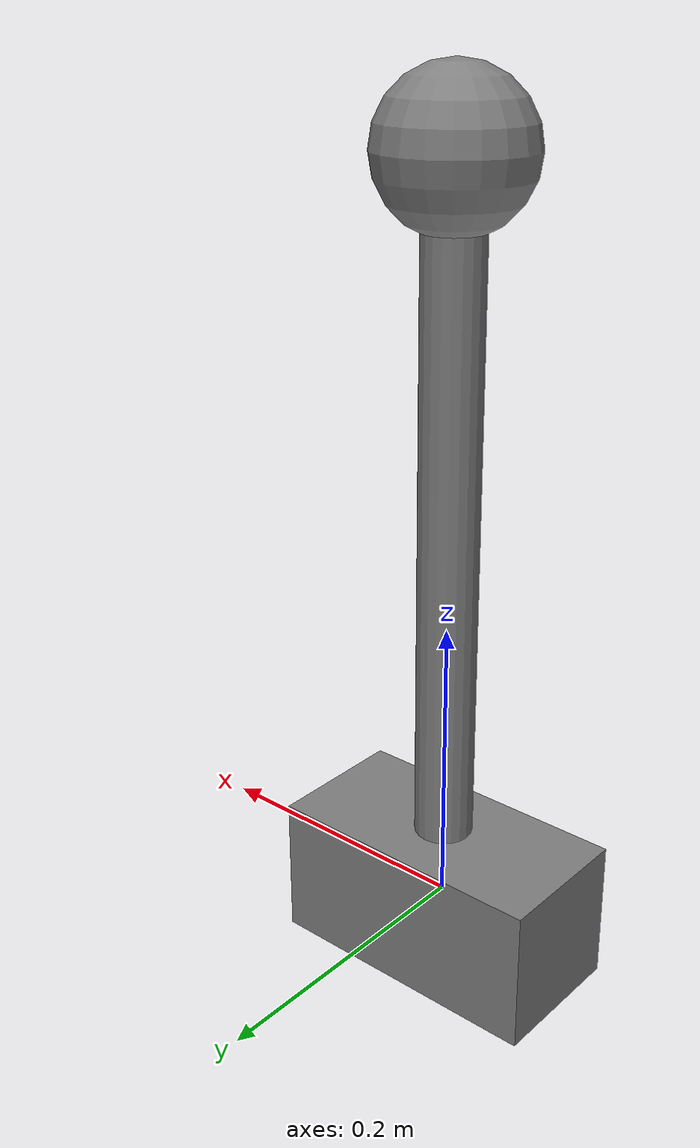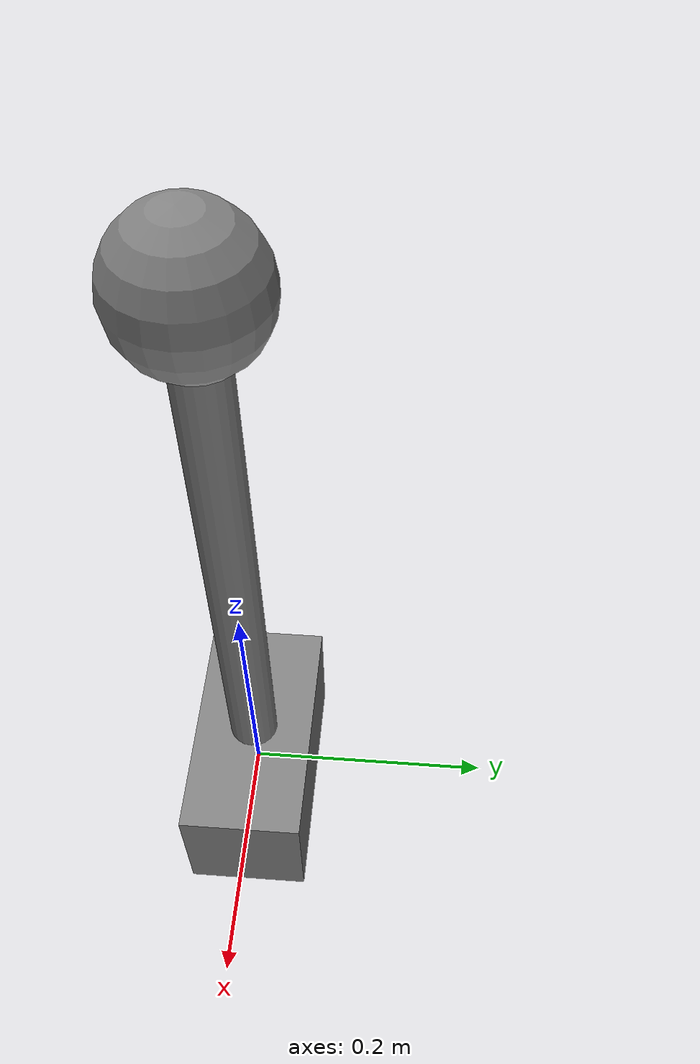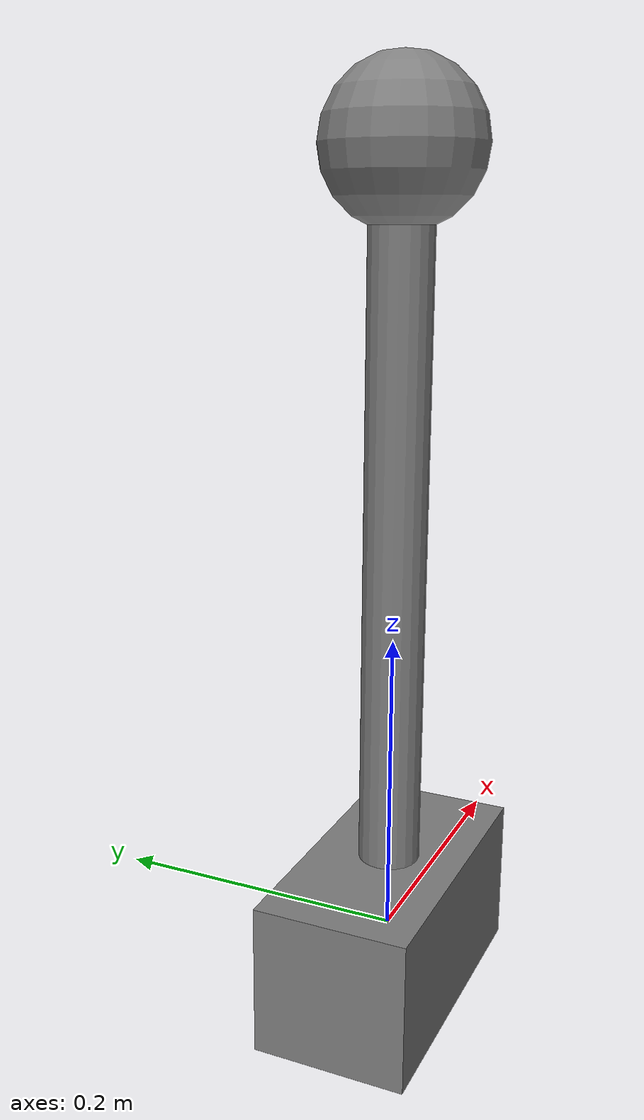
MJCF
<mujoco model="cartpole">
  <compiler angle="radian"/>
  <option gravity="0 0 -9.81"/>
  <worldbody>
    <body name="cart" pos="0 0 0">
      <joint name="slider" type="slide" axis="1 0 0" range="-2 2" damping="0.01"/>
      <geom type="box" size="0.1 0.05 0.05" mass="0.5"/>
      <body name="pole" pos="0 0 0">
        <joint name="hinge" type="hinge" axis="0 1 0" damping="0.01" range="-3.14 3.14"/>
        <geom type="capsule" fromto="0 0 0 0 0 0.5" size="0.02" mass="0.1"/>
        <geom type="sphere" pos="0 0 0.5" size="0.05" mass="0.05"/>
      </body>
    </body>
  </worldbody>
  <actuator>
    <motor name="cart_force" joint="slider" gear="1" ctrlrange="-10 10"/>
  </actuator>
</mujoco>
